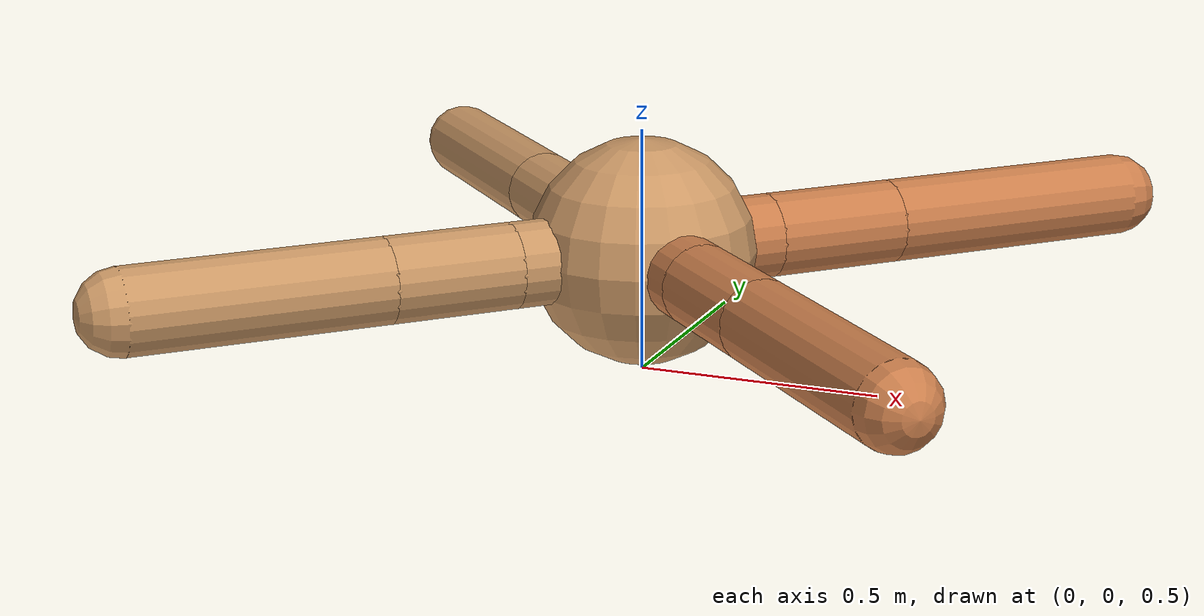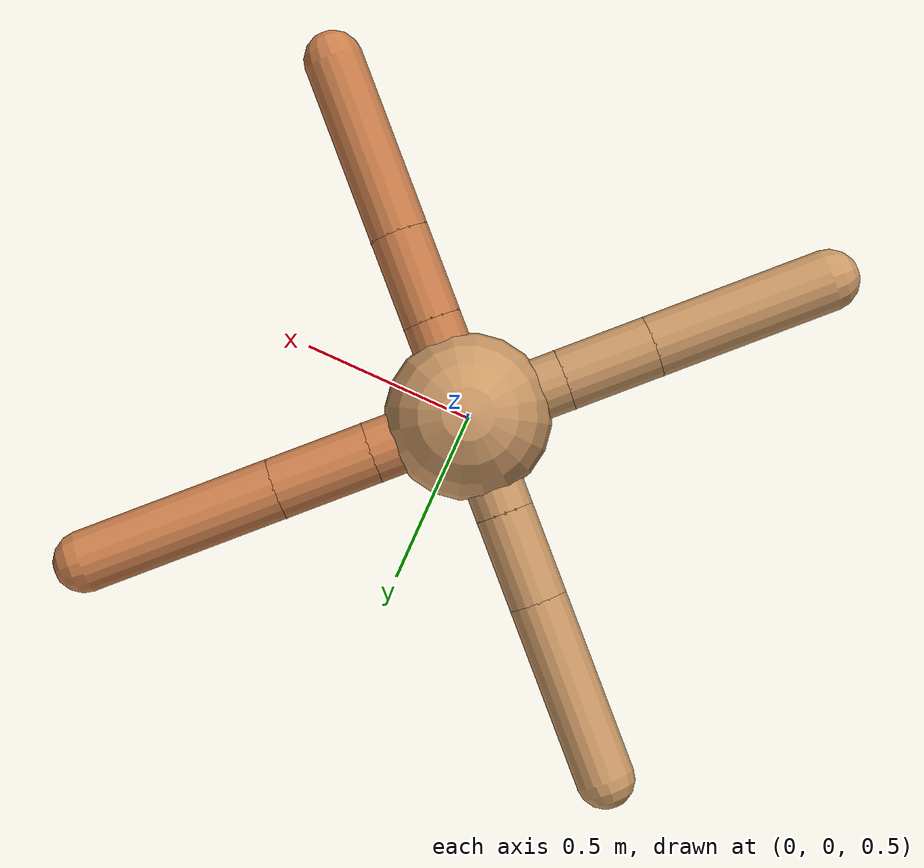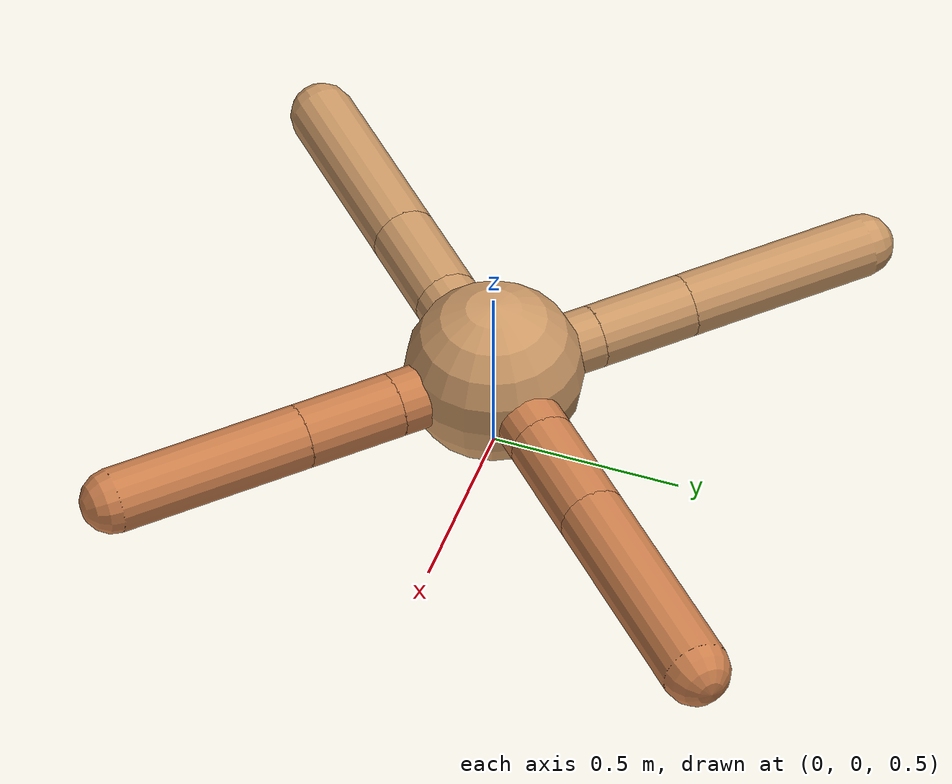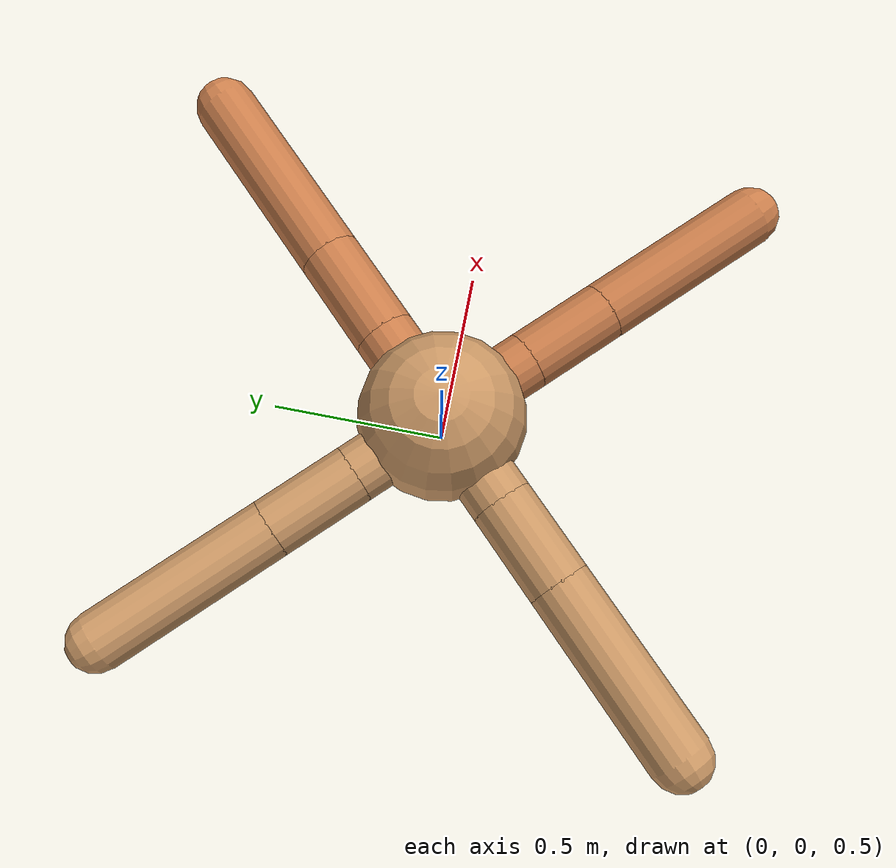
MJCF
<?xml version="1.0" ?>
<mujoco model="ant">

	<compiler angle="degree" coordinate="local" inertiafromgeom="true"/>

	<option integrator="RK4" timestep="0.01"/>

	<custom>

		<numeric data="0.0 0.0 0.55 1.0 0.0 0.0 0.0 0.0 1.0 0.0 -1.0 0.0 -1.0 0.0 1.0" name="init_qpos"/>

	</custom>

	<default>

		<joint armature="1" damping="1" limited="true"/>

		<geom conaffinity="0" condim="3" density="5.0" friction="1.5 0.1 0.1" margin="0.01" rgba="0.8 0.6 0.4 1"/>

	</default>

	<worldbody>

		<body name="torso" pos="0 0 0.75">

			<geom name="torso_geom" pos="0 0 0" size="0.23189147329721754" type="sphere"/>

			<!--joint armature="0" damping="0" limited="false" margin="0.01" name="root" pos="0 0 0" type="free"/-->

			<body name="front_left_leg" pos="0 0 0">

				<geom fromto="0 0 0 0.2 0.2 0" name="aux_1_geom" size="0.08739780304783527" type="capsule" rgba=".8 .5 .3 1"/>

				<body name="aux_1" pos="0.2 0.2 0">

					<joint axis="0 0 1" name="hip_1" pos="0.0 0.0 0.0" range="-40 40" type="hinge"/>

					<geom fromto="0 0 0 0.19903474156843187 0.19903474156843187 0" name="left_leg_geom" size="0.08739780304783527" type="capsule" rgba=".8 .5 .3 1"/>

					<body pos="0.19903474156843187 0.19903474156843187 0" name="front_left_foot">

						<joint axis="-1 1 0" name="ankle_1" pos="0.0 0.0 0.0" range="30 100" type="hinge"/>

						<geom fromto="0 0 0 0.39806948313686374 0.39806948313686374 0" name="left_ankle_geom" size="0.08739780304783527" type="capsule" rgba=".8 .5 .3 1"/>

					</body>

				</body>

			</body>

			<body name="front_right_leg" pos="0 0 0">

				<geom fromto="0 0 0 -0.2 0.2 0" name="aux_2_geom" size="0.08244980290116465" type="capsule"/>

				<body name="aux_2" pos="-0.2 0.2 0">

					<joint axis="0 0 1" name="hip_2" pos="0.0 0.0 0.0" range="-40 40" type="hinge"/>

					<geom fromto="0 0 0 -0.18415776952455418 0.18415776952455418 0" name="right_leg_geom" size="0.08244980290116465" type="capsule"/>

					<body pos="-0.18415776952455418 0.18415776952455418 0" name="front_right_foot">

						<joint axis="1 1 0" name="ankle_2" pos="0.0 0.0 0.0" range="-100 -30" type="hinge"/>

						<geom fromto="0 0 0 -0.36831553904910835 0.36831553904910835 0" name="right_ankle_geom" size="0.08244980290116465" type="capsule"/>

					</body>

				</body>

			</body>

			<body name="left_back_leg" pos="0 0 0">

				<geom fromto="0 0 0 -0.2 -0.2 0" name="aux_3_geom" size="0.08727926002127381" type="capsule"/>

				<body name="aux_3" pos="-0.2 -0.2 0">

					<joint axis="0 0 1" name="hip_3" pos="0.0 0.0 0.0" range="-40 40" type="hinge"/>

					<geom fromto="0 0 0 -0.1836339713660905 -0.1836339713660905 0" name="back_leg_geom" size="0.08727926002127381" type="capsule"/>

					<body pos="-0.1836339713660905 -0.1836339713660905 0" name="left_back_foot">

						<joint axis="-1 1 0" name="ankle_3" pos="0.0 0.0 0.0" range="-100 -30" type="hinge"/>

						<geom fromto="0 0 0 -0.367267942732181 -0.367267942732181 0" name="third_ankle_geom" size="0.08727926002127381" type="capsule"/>

					</body>

				</body>

			</body>

			<body name="right_back_leg" pos="0 0 0">

				<geom fromto="0 0 0 0.2 -0.2 0" name="aux_4_geom" size="0.08335359974310814" type="capsule" rgba=".8 .5 .3 1"/>

				<body name="aux_4" pos="0.2 -0.2 0">

					<joint axis="0 0 1" name="hip_4" pos="0.0 0.0 0.0" range="-40 40" type="hinge"/>

					<geom fromto="0 0 0 0.18156566794533516 -0.18156566794533516 0" name="rightback_leg_geom" size="0.08335359974310814" type="capsule" rgba=".8 .5 .3 1"/>

					<body pos="0.18156566794533516 -0.18156566794533516 0" name="right_back_foot">

						<joint axis="1 1 0" name="ankle_4" pos="0.0 0.0 0.0" range="30 100" type="hinge"/>

						<geom fromto="0 0 0 0.3631313358906703 -0.3631313358906703 0" name="fourth_ankle_geom" size="0.08335359974310814" type="capsule" rgba=".8 .5 .3 1"/>

					</body>

				</body>

			</body>

		</body>

	</worldbody>

	<actuator>

		<motor ctrllimited="true" ctrlrange="-1.0 1.0" joint="hip_4" gear="150"/>

		<motor ctrllimited="true" ctrlrange="-1.0 1.0" joint="ankle_4" gear="150"/>

		<motor ctrllimited="true" ctrlrange="-1.0 1.0" joint="hip_1" gear="150"/>

		<motor ctrllimited="true" ctrlrange="-1.0 1.0" joint="ankle_1" gear="150"/>

		<motor ctrllimited="true" ctrlrange="-1.0 1.0" joint="hip_2" gear="150"/>

		<motor ctrllimited="true" ctrlrange="-1.0 1.0" joint="ankle_2" gear="150"/>

		<motor ctrllimited="true" ctrlrange="-1.0 1.0" joint="hip_3" gear="150"/>

		<motor ctrllimited="true" ctrlrange="-1.0 1.0" joint="ankle_3" gear="150"/>

	</actuator>

</mujoco>
